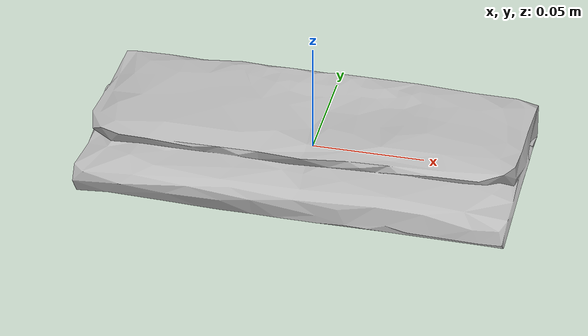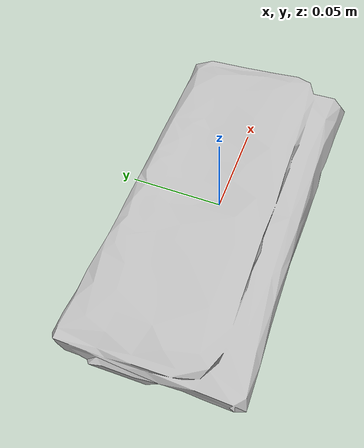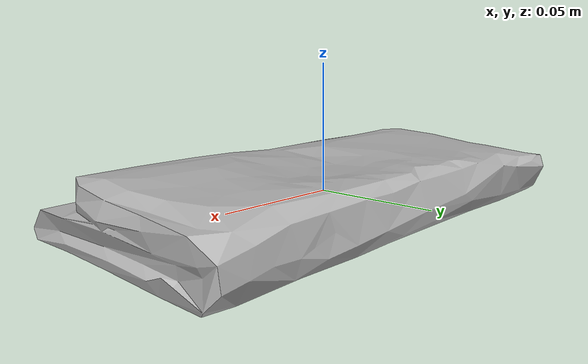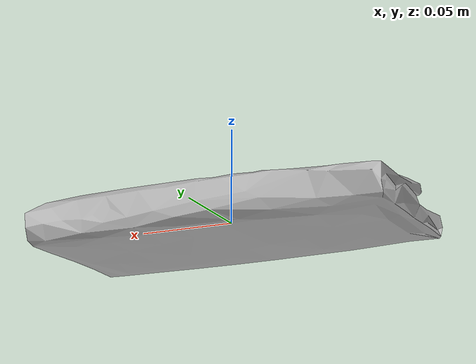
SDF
<?xml version="1.0" ?>
<sdf version="1.4">
    <model name='wallet'>
      <link name='link'>
        <pose>0 0 0 0 0 0</pose>
        <inertial>
          <mass>0.2</mass>
          <inertia>
            <ixx>0.0000156</ixx>
            <ixy>0</ixy>
            <ixz>0</ixz>
            <iyy>0.00061</iyy>
            <iyz>0</iyz>
            <izz>0.000648</izz>
          </inertia>
        </inertial>
        <visual name='wallet'>
          <pose>0.0 0.0 0.0 0 0 0</pose>
          <geometry>
            <mesh>
              <uri>model://wallet/meshes/wallet.dae</uri>
            </mesh>
          </geometry>
          <material/>
        </visual>
        <collision name='wallet'>
          <pose>0.0 0.0 0.0 0 0 0</pose>
          <geometry>
            <mesh>
              <uri>model://wallet/meshes/wallet.dae</uri>
            </mesh>
          </geometry>
          <max_contacts>10</max_contacts>
          <surface>
            <bounce>
              <restitution_coefficient>0.2</restitution_coefficient>
              <threshold>0</threshold>
            </bounce>
            <friction>
              <ode/>
            </friction>
            <contact>
              <ode/>
            </contact>
          </surface>
        </collision>
        <velocity_decay>
          <linear>0</linear>
          <angular>0</angular>
        </velocity_decay>
        <self_collide>0</self_collide>
        <kinematic>0</kinematic>
        <gravity>1</gravity>
      </link>
      <static>0</static>
    </model>
</sdf>
